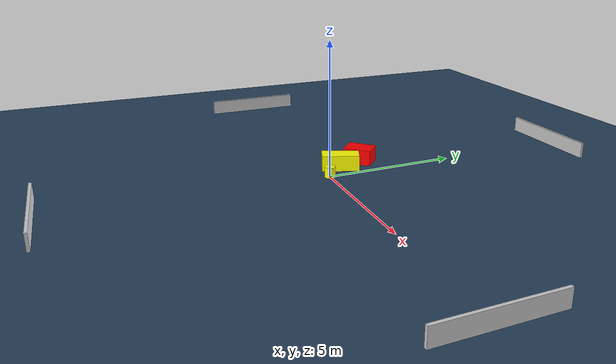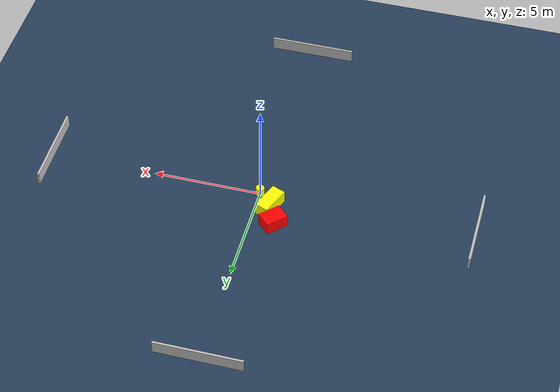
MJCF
<?xml version="1.0" ?>
<mujoco model="generated_environment">
  <option timestep="0.01" integrator="RK4" cone="elliptic"/>
  <default>
    <geom density="1"/>
  </default>
  <asset>
    <texture builtin="gradient" height="3072" name="skybox" rgb1="0.3 0.5 0.7" rgb2="0 0 0" type="skybox" width="512"/>
    <texture builtin="checker" height="300" name="groundplane" rgb1="0.2 0.3 0.4" rgb2="0.1 0.2 0.3" type="2d" width="300"/>
    <material name="groundplane" reflectance="0.2" texrepeat="5 5" texture="groundplane"/>
  </asset>
  <worldbody>
    <light dir="0 0 -1" directional="true" pos="0 0 1.5"/>
    <geom condim="3" friction="0.5 0.005 0.001" material="groundplane" name="floor" pos="0 0 0" size="0 0 0.05" type="plane"/>
    <body name="walls">
      <geom name="wall_1" condim="4" pos="-10.0 0.0 0.3" rgba="0.800000011920929 0.800000011920929 0.800000011920929 1.0" size="0.05 2.0 0.3" type="box"/>
      <geom name="wall_2" condim="4" pos="10.0 0.0 0.3" rgba="0.800000011920929 0.800000011920929 0.800000011920929 1.0" size="0.05 2.0 0.3" type="box"/>
      <geom name="wall_3" condim="4" pos="0.0 -10.0 0.3" rgba="0.800000011920929 0.800000011920929 0.800000011920929 1.0" size="2.0 0.05 0.3" type="box"/>
      <geom name="wall_4" condim="4" pos="0.0 10.0 0.3" rgba="0.800000011920929 0.800000011920929 0.800000011920929 1.0" size="2.0 0.05 0.3" type="box"/>
    </body>
    <body name="robot">
      <joint name="joint_x" type="slide" pos="0 0 0" axis="1 0 0"/>
      <joint name="joint_y" type="slide" pos="0 0 0" axis="0 1 0"/>
      <geom name="robot" type="cylinder" pos="0.0 0.0 0.2" size="0.2 0.2 0.0" mass="5.0" friction="1.0 0.005 0.0001" condim="4" rgba="1.0 1.0 0.0 1.0"/>
    </body>
    <body name="obstacle_1_movable">
      <geom name="obstacle_1_movable" condim="4" pos="-0.6433578606509227 0.6996157899541339 0.3" euler="0 0 338.80325149218356" friction="0.0 0.005 0.001" rgba="1.0 1.0 0.0 1.0" size="0.32352644882928844 0.7005978418168797 0.3" type="box" mass="0.1"/>
      <joint type="free"/>
    </body>
    <body name="obstacle_2_static">
      <geom name="obstacle_2_static" condim="4" pos="-1.0558643303643145 1.697630985578485 0.3" euler="0 0 45.42257499442792" friction="0.0 0.005 0.001" rgba="1.0 0.0 0.0 1.0" size="0.5364765902562435 0.38933932766428386 0.3" type="box"/>
    </body>
  </worldbody>
  <actuator>
    <motor name="actuator_x" joint="joint_x" gear="1" ctrlrange="-1 1"/>
    <motor name="actuator_y" joint="joint_y" gear="1" ctrlrange="-1 1"/>
  </actuator>
</mujoco>
